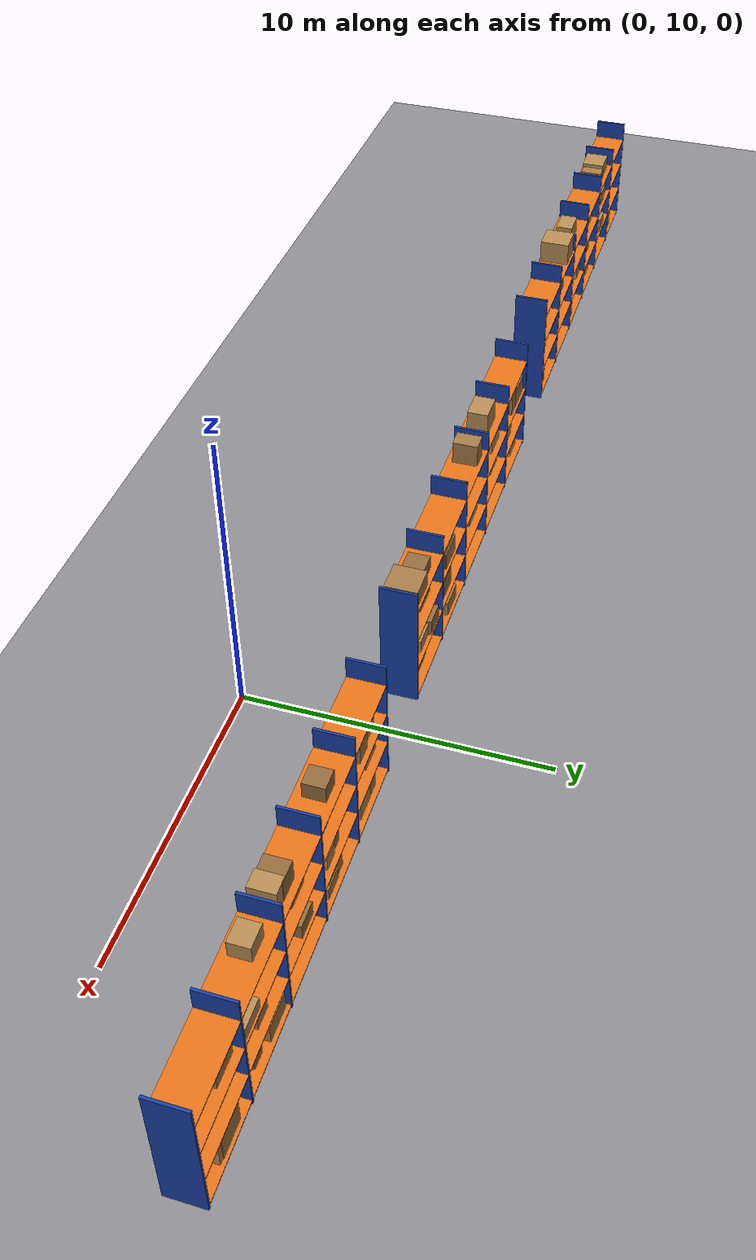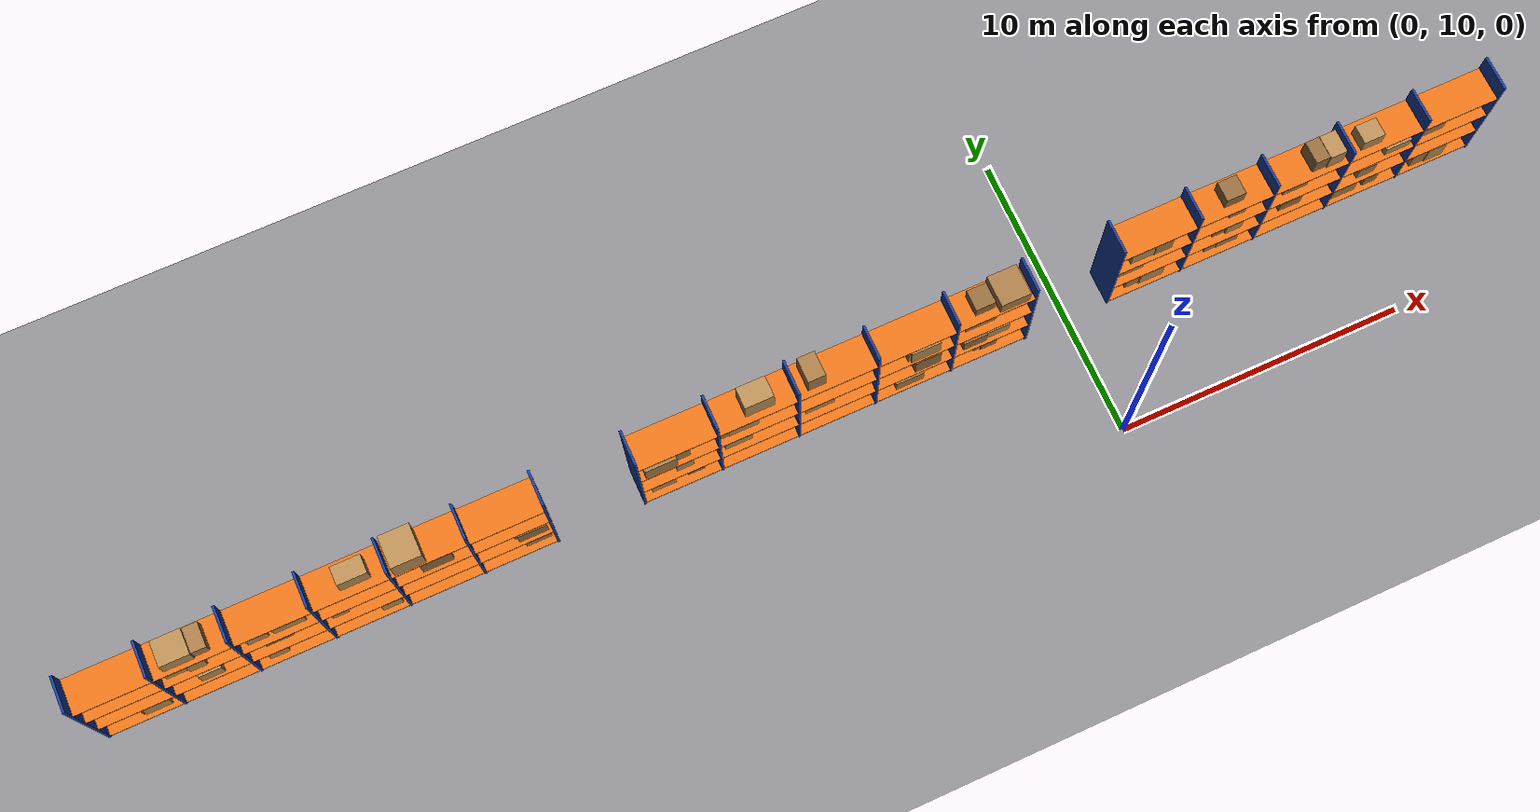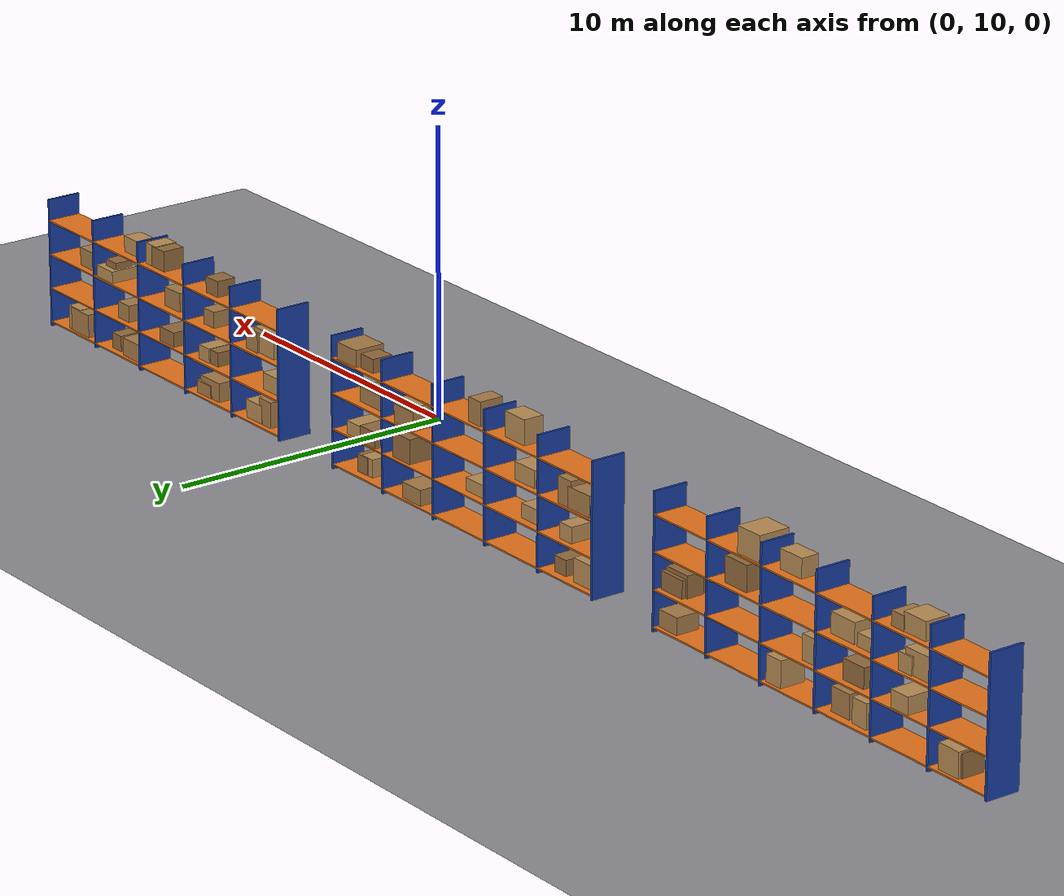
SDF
<sdf version="1.9">
 <world name="warehouse">
  <model name="ground_plane">
   <static>true</static>
   <link name="link">
    <collision name="collision">
     <geometry><plane><normal>0 0 1</normal><size>1 1</size></plane></geometry>
    </collision>
    <visual name="visual">
     <geometry><plane><normal>0 0 1</normal><size>200 100</size></plane></geometry>
     <material>
      <ambient>0.55 0.55 0.57 1</ambient>
      <diffuse>0.55 0.55 0.57 1</diffuse>
      <specular>0.1 0.1 0.1 1</specular>
     </material>
    </visual>
   </link>
  </model>
  <model name="rack28">
   <static>true</static>
   <link name="link">
    <collision name="up0_c">
     <pose>-33.000 14.700 2.250 0 0 0</pose>
     <geometry><box><size>0.080 1.200 4.500</size></box></geometry>
    </collision>
    <visual name="up0_v">
     <pose>-33.000 14.700 2.250 0 0 0</pose>
     <geometry><box><size>0.080 1.200 4.500</size></box></geometry>
     <material>
      <ambient>0.1 0.25 0.65 1</ambient>
      <diffuse>0.1 0.25 0.65 1</diffuse>
      <specular>0.1 0.1 0.1 1</specular>
     </material>
    </visual>
    <collision name="up1_c">
     <pose>-30.500 14.700 2.250 0 0 0</pose>
     <geometry><box><size>0.080 1.200 4.500</size></box></geometry>
    </collision>
    <visual name="up1_v">
     <pose>-30.500 14.700 2.250 0 0 0</pose>
     <geometry><box><size>0.080 1.200 4.500</size></box></geometry>
     <material>
      <ambient>0.1 0.25 0.65 1</ambient>
      <diffuse>0.1 0.25 0.65 1</diffuse>
      <specular>0.1 0.1 0.1 1</specular>
     </material>
    </visual>
    <collision name="up2_c">
     <pose>-28.000 14.700 2.250 0 0 0</pose>
     <geometry><box><size>0.080 1.200 4.500</size></box></geometry>
    </collision>
    <visual name="up2_v">
     <pose>-28.000 14.700 2.250 0 0 0</pose>
     <geometry><box><size>0.080 1.200 4.500</size></box></geometry>
     <material>
      <ambient>0.1 0.25 0.65 1</ambient>
      <diffuse>0.1 0.25 0.65 1</diffuse>
      <specular>0.1 0.1 0.1 1</specular>
     </material>
    </visual>
    <collision name="up3_c">
     <pose>-25.500 14.700 2.250 0 0 0</pose>
     <geometry><box><size>0.080 1.200 4.500</size></box></geometry>
    </collision>
    <visual name="up3_v">
     <pose>-25.500 14.700 2.250 0 0 0</pose>
     <geometry><box><size>0.080 1.200 4.500</size></box></geometry>
     <material>
      <ambient>0.1 0.25 0.65 1</ambient>
      <diffuse>0.1 0.25 0.65 1</diffuse>
      <specular>0.1 0.1 0.1 1</specular>
     </material>
    </visual>
    <collision name="up4_c">
     <pose>-23.000 14.700 2.250 0 0 0</pose>
     <geometry><box><size>0.080 1.200 4.500</size></box></geometry>
    </collision>
    <visual name="up4_v">
     <pose>-23.000 14.700 2.250 0 0 0</pose>
     <geometry><box><size>0.080 1.200 4.500</size></box></geometry>
     <material>
      <ambient>0.1 0.25 0.65 1</ambient>
      <diffuse>0.1 0.25 0.65 1</diffuse>
      <specular>0.1 0.1 0.1 1</specular>
     </material>
    </visual>
    <collision name="up5_c">
     <pose>-20.500 14.700 2.250 0 0 0</pose>
     <geometry><box><size>0.080 1.200 4.500</size></box></geometry>
    </collision>
    <visual name="up5_v">
     <pose>-20.500 14.700 2.250 0 0 0</pose>
     <geometry><box><size>0.080 1.200 4.500</size></box></geometry>
     <material>
      <ambient>0.1 0.25 0.65 1</ambient>
      <diffuse>0.1 0.25 0.65 1</diffuse>
      <specular>0.1 0.1 0.1 1</specular>
     </material>
    </visual>
    <collision name="up6_c">
     <pose>-18.000 14.700 2.250 0 0 0</pose>
     <geometry><box><size>0.080 1.200 4.500</size></box></geometry>
    </collision>
    <visual name="up6_v">
     <pose>-18.000 14.700 2.250 0 0 0</pose>
     <geometry><box><size>0.080 1.200 4.500</size></box></geometry>
     <material>
      <ambient>0.1 0.25 0.65 1</ambient>
      <diffuse>0.1 0.25 0.65 1</diffuse>
      <specular>0.1 0.1 0.1 1</specular>
     </material>
    </visual>
    <collision name="sh0_c">
     <pose>-25.500 14.700 0.150 0 0 0</pose>
     <geometry><box><size>15.000 1.200 0.050</size></box></geometry>
    </collision>
    <visual name="sh0_v">
     <pose>-25.500 14.700 0.150 0 0 0</pose>
     <geometry><box><size>15.000 1.200 0.050</size></box></geometry>
     <material>
      <ambient>0.9 0.45 0.1 1</ambient>
      <diffuse>0.9 0.45 0.1 1</diffuse>
      <specular>0.1 0.1 0.1 1</specular>
     </material>
    </visual>
    <collision name="sh1_c">
     <pose>-25.500 14.700 1.350 0 0 0</pose>
     <geometry><box><size>15.000 1.200 0.050</size></box></geometry>
    </collision>
    <visual name="sh1_v">
     <pose>-25.500 14.700 1.350 0 0 0</pose>
     <geometry><box><size>15.000 1.200 0.050</size></box></geometry>
     <material>
      <ambient>0.9 0.45 0.1 1</ambient>
      <diffuse>0.9 0.45 0.1 1</diffuse>
      <specular>0.1 0.1 0.1 1</specular>
     </material>
    </visual>
    <collision name="sh2_c">
     <pose>-25.500 14.700 2.550 0 0 0</pose>
     <geometry><box><size>15.000 1.200 0.050</size></box></geometry>
    </collision>
    <visual name="sh2_v">
     <pose>-25.500 14.700 2.550 0 0 0</pose>
     <geometry><box><size>15.000 1.200 0.050</size></box></geometry>
     <material>
      <ambient>0.9 0.45 0.1 1</ambient>
      <diffuse>0.9 0.45 0.1 1</diffuse>
      <specular>0.1 0.1 0.1 1</specular>
     </material>
    </visual>
    <collision name="sh3_c">
     <pose>-25.500 14.700 3.750 0 0 0</pose>
     <geometry><box><size>15.000 1.200 0.050</size></box></geometry>
    </collision>
    <visual name="sh3_v">
     <pose>-25.500 14.700 3.750 0 0 0</pose>
     <geometry><box><size>15.000 1.200 0.050</size></box></geometry>
     <material>
      <ambient>0.9 0.45 0.1 1</ambient>
      <diffuse>0.9 0.45 0.1 1</diffuse>
      <specular>0.1 0.1 0.1 1</specular>
     </material>
    </visual>
    <collision name="c0_c">
     <pose>-31.268 14.721 0.588 0 0 0</pose>
     <geometry><box><size>0.867 0.930 0.827</size></box></geometry>
    </collision>
    <visual name="c0_v">
     <pose>-31.268 14.721 0.588 0 0 0</pose>
     <geometry><box><size>0.867 0.930 0.827</size></box></geometry>
     <material>
      <ambient>0.72 0.55 0.33 1</ambient>
      <diffuse>0.72 0.55 0.33 1</diffuse>
      <specular>0.1 0.1 0.1 1</specular>
     </material>
    </visual>
    <collision name="c1_c">
     <pose>-31.446 14.690 0.563 0 0 0</pose>
     <geometry><box><size>0.645 0.805 0.776</size></box></geometry>
    </collision>
    <visual name="c1_v">
     <pose>-31.446 14.690 0.563 0 0 0</pose>
     <geometry><box><size>0.645 0.805 0.776</size></box></geometry>
     <material>
      <ambient>0.58 0.42 0.24 1</ambient>
      <diffuse>0.58 0.42 0.24 1</diffuse>
      <specular>0.1 0.1 0.1 1</specular>
     </material>
    </visual>
    <collision name="c2_c">
     <pose>-29.193 14.722 1.658 0 0 0</pose>
     <geometry><box><size>0.752 1.065 0.566</size></box></geometry>
    </collision>
    <visual name="c2_v">
     <pose>-29.193 14.722 1.658 0 0 0</pose>
     <geometry><box><size>0.752 1.065 0.566</size></box></geometry>
     <material>
      <ambient>0.72 0.55 0.33 1</ambient>
      <diffuse>0.72 0.55 0.33 1</diffuse>
      <specular>0.1 0.1 0.1 1</specular>
     </material>
    </visual>
    <collision name="c3_c">
     <pose>-29.786 14.741 2.969 0 0 0</pose>
     <geometry><box><size>1.050 0.775 0.787</size></box></geometry>
    </collision>
    <visual name="c3_v">
     <pose>-29.786 14.741 2.969 0 0 0</pose>
     <geometry><box><size>1.050 0.775 0.787</size></box></geometry>
     <material>
      <ambient>0.72 0.55 0.33 1</ambient>
      <diffuse>0.72 0.55 0.33 1</diffuse>
      <specular>0.1 0.1 0.1 1</specular>
     </material>
    </visual>
    <collision name="c4_c">
     <pose>-29.314 14.730 2.867 0 0 0</pose>
     <geometry><box><size>0.577 0.913 0.584</size></box></geometry>
    </collision>
    <visual name="c4_v">
     <pose>-29.314 14.730 2.867 0 0 0</pose>
     <geometry><box><size>0.577 0.913 0.584</size></box></geometry>
     <material>
      <ambient>0.72 0.55 0.33 1</ambient>
      <diffuse>0.72 0.55 0.33 1</diffuse>
      <specular>0.1 0.1 0.1 1</specular>
     </material>
    </visual>
    <collision name="c5_c">
     <pose>-28.892 14.720 4.012 0 0 0</pose>
     <geometry><box><size>0.544 0.833 0.475</size></box></geometry>
    </collision>
    <visual name="c5_v">
     <pose>-28.892 14.720 4.012 0 0 0</pose>
     <geometry><box><size>0.544 0.833 0.475</size></box></geometry>
     <material>
      <ambient>0.65 0.48 0.28 1</ambient>
      <diffuse>0.65 0.48 0.28 1</diffuse>
      <specular>0.1 0.1 0.1 1</specular>
     </material>
    </visual>
    <collision name="c6_c">
     <pose>-29.600 14.685 4.081 0 0 0</pose>
     <geometry><box><size>0.971 0.864 0.612</size></box></geometry>
    </collision>
    <visual name="c6_v">
     <pose>-29.600 14.685 4.081 0 0 0</pose>
     <geometry><box><size>0.971 0.864 0.612</size></box></geometry>
     <material>
      <ambient>0.72 0.55 0.33 1</ambient>
      <diffuse>0.72 0.55 0.33 1</diffuse>
      <specular>0.1 0.1 0.1 1</specular>
     </material>
    </visual>
    <collision name="c7_c">
     <pose>-26.364 14.729 0.577 0 0 0</pose>
     <geometry><box><size>0.812 0.606 0.803</size></box></geometry>
    </collision>
    <visual name="c7_v">
     <pose>-26.364 14.729 0.577 0 0 0</pose>
     <geometry><box><size>0.812 0.606 0.803</size></box></geometry>
     <material>
      <ambient>0.65 0.48 0.28 1</ambient>
      <diffuse>0.65 0.48 0.28 1</diffuse>
      <specular>0.1 0.1 0.1 1</specular>
     </material>
    </visual>
    <collision name="c8_c">
     <pose>-27.275 14.694 0.586 0 0 0</pose>
     <geometry><box><size>0.635 0.783 0.823</size></box></geometry>
    </collision>
    <visual name="c8_v">
     <pose>-27.275 14.694 0.586 0 0 0</pose>
     <geometry><box><size>0.635 0.783 0.823</size></box></geometry>
     <material>
      <ambient>0.72 0.55 0.33 1</ambient>
      <diffuse>0.72 0.55 0.33 1</diffuse>
      <specular>0.1 0.1 0.1 1</specular>
     </material>
    </visual>
    <collision name="c9_c">
     <pose>-26.960 14.731 1.708 0 0 0</pose>
     <geometry><box><size>0.922 0.691 0.666</size></box></geometry>
    </collision>
    <visual name="c9_v">
     <pose>-26.960 14.731 1.708 0 0 0</pose>
     <geometry><box><size>0.922 0.691 0.666</size></box></geometry>
     <material>
      <ambient>0.58 0.42 0.24 1</ambient>
      <diffuse>0.58 0.42 0.24 1</diffuse>
      <specular>0.1 0.1 0.1 1</specular>
     </material>
    </visual>
    <collision name="c10_c">
     <pose>-27.392 14.677 2.796 0 0 0</pose>
     <geometry><box><size>0.681 0.730 0.441</size></box></geometry>
    </collision>
    <visual name="c10_v">
     <pose>-27.392 14.677 2.796 0 0 0</pose>
     <geometry><box><size>0.681 0.730 0.441</size></box></geometry>
     <material>
      <ambient>0.72 0.55 0.33 1</ambient>
      <diffuse>0.72 0.55 0.33 1</diffuse>
      <specular>0.1 0.1 0.1 1</specular>
     </material>
    </visual>
    <collision name="c11_c">
     <pose>-26.381 14.670 2.914 0 0 0</pose>
     <geometry><box><size>1.052 0.706 0.679</size></box></geometry>
    </collision>
    <visual name="c11_v">
     <pose>-26.381 14.670 2.914 0 0 0</pose>
     <geometry><box><size>1.052 0.706 0.679</size></box></geometry>
     <material>
      <ambient>0.72 0.55 0.33 1</ambient>
      <diffuse>0.72 0.55 0.33 1</diffuse>
      <specular>0.1 0.1 0.1 1</specular>
     </material>
    </visual>
    <collision name="c12_c">
     <pose>-23.516 14.733 0.615 0 0 0</pose>
     <geometry><box><size>0.675 0.902 0.881</size></box></geometry>
    </collision>
    <visual name="c12_v">
     <pose>-23.516 14.733 0.615 0 0 0</pose>
     <geometry><box><size>0.675 0.902 0.881</size></box></geometry>
     <material>
      <ambient>0.72 0.55 0.33 1</ambient>
      <diffuse>0.72 0.55 0.33 1</diffuse>
      <specular>0.1 0.1 0.1 1</specular>
     </material>
    </visual>
    <collision name="c13_c">
     <pose>-23.465 14.735 0.405 0 0 0</pose>
     <geometry><box><size>0.635 0.700 0.461</size></box></geometry>
    </collision>
    <visual name="c13_v">
     <pose>-23.465 14.735 0.405 0 0 0</pose>
     <geometry><box><size>0.635 0.700 0.461</size></box></geometry>
     <material>
      <ambient>0.58 0.42 0.24 1</ambient>
      <diffuse>0.58 0.42 0.24 1</diffuse>
      <specular>0.1 0.1 0.1 1</specular>
     </material>
    </visual>
    <collision name="c14_c">
     <pose>-24.979 14.738 1.790 0 0 0</pose>
     <geometry><box><size>0.519 0.762 0.830</size></box></geometry>
    </collision>
    <visual name="c14_v">
     <pose>-24.979 14.738 1.790 0 0 0</pose>
     <geometry><box><size>0.519 0.762 0.830</size></box></geometry>
     <material>
      <ambient>0.72 0.55 0.33 1</ambient>
      <diffuse>0.72 0.55 0.33 1</diffuse>
      <specular>0.1 0.1 0.1 1</specular>
     </material>
    </visual>
    <collision name="c15_c">
     <pose>-23.999 14.694 4.099 0 0 0</pose>
     <geometry><box><size>0.976 0.625 0.647</size></box></geometry>
    </collision>
    <visual name="c15_v">
     <pose>-23.999 14.694 4.099 0 0 0</pose>
     <geometry><box><size>0.976 0.625 0.647</size></box></geometry>
     <material>
      <ambient>0.72 0.55 0.33 1</ambient>
      <diffuse>0.72 0.55 0.33 1</diffuse>
      <specular>0.1 0.1 0.1 1</specular>
     </material>
    </visual>
    <collision name="c16_c">
     <pose>-21.599 14.653 3.005 0 0 0</pose>
     <geometry><box><size>1.012 0.867 0.860</size></box></geometry>
    </collision>
    <visual name="c16_v">
     <pose>-21.599 14.653 3.005 0 0 0</pose>
     <geometry><box><size>1.012 0.867 0.860</size></box></geometry>
     <material>
      <ambient>0.58 0.42 0.24 1</ambient>
      <diffuse>0.58 0.42 0.24 1</diffuse>
      <specular>0.1 0.1 0.1 1</specular>
     </material>
    </visual>
    <collision name="c17_c">
     <pose>-22.339 14.683 4.207 0 0 0</pose>
     <geometry><box><size>1.013 1.092 0.864</size></box></geometry>
    </collision>
    <visual name="c17_v">
     <pose>-22.339 14.683 4.207 0 0 0</pose>
     <geometry><box><size>1.013 1.092 0.864</size></box></geometry>
     <material>
      <ambient>0.72 0.55 0.33 1</ambient>
      <diffuse>0.72 0.55 0.33 1</diffuse>
      <specular>0.1 0.1 0.1 1</specular>
     </material>
    </visual>
    <collision name="c18_c">
     <pose>-18.543 14.745 0.457 0 0 0</pose>
     <geometry><box><size>0.861 0.825 0.564</size></box></geometry>
    </collision>
    <visual name="c18_v">
     <pose>-18.543 14.745 0.457 0 0 0</pose>
     <geometry><box><size>0.861 0.825 0.564</size></box></geometry>
     <material>
      <ambient>0.65 0.48 0.28 1</ambient>
      <diffuse>0.65 0.48 0.28 1</diffuse>
      <specular>0.1 0.1 0.1 1</specular>
     </material>
    </visual>
    <collision name="c19_c">
     <pose>-18.705 14.661 1.741 0 0 0</pose>
     <geometry><box><size>1.001 0.602 0.731</size></box></geometry>
    </collision>
    <visual name="c19_v">
     <pose>-18.705 14.661 1.741 0 0 0</pose>
     <geometry><box><size>1.001 0.602 0.731</size></box></geometry>
     <material>
      <ambient>0.58 0.42 0.24 1</ambient>
      <diffuse>0.58 0.42 0.24 1</diffuse>
      <specular>0.1 0.1 0.1 1</specular>
     </material>
    </visual>
    <collision name="c20_c">
     <pose>-18.631 14.658 1.669 0 0 0</pose>
     <geometry><box><size>0.990 0.883 0.589</size></box></geometry>
    </collision>
    <visual name="c20_v">
     <pose>-18.631 14.658 1.669 0 0 0</pose>
     <geometry><box><size>0.990 0.883 0.589</size></box></geometry>
     <material>
      <ambient>0.58 0.42 0.24 1</ambient>
      <diffuse>0.58 0.42 0.24 1</diffuse>
      <specular>0.1 0.1 0.1 1</specular>
     </material>
    </visual>
   </link>
  </model>
  <model name="rack29">
   <static>true</static>
   <link name="link">
    <collision name="up0_c">
     <pose>-15.000 14.700 2.250 0 0 0</pose>
     <geometry><box><size>0.080 1.200 4.500</size></box></geometry>
    </collision>
    <visual name="up0_v">
     <pose>-15.000 14.700 2.250 0 0 0</pose>
     <geometry><box><size>0.080 1.200 4.500</size></box></geometry>
     <material>
      <ambient>0.1 0.25 0.65 1</ambient>
      <diffuse>0.1 0.25 0.65 1</diffuse>
      <specular>0.1 0.1 0.1 1</specular>
     </material>
    </visual>
    <collision name="up1_c">
     <pose>-12.300 14.700 2.250 0 0 0</pose>
     <geometry><box><size>0.080 1.200 4.500</size></box></geometry>
    </collision>
    <visual name="up1_v">
     <pose>-12.300 14.700 2.250 0 0 0</pose>
     <geometry><box><size>0.080 1.200 4.500</size></box></geometry>
     <material>
      <ambient>0.1 0.25 0.65 1</ambient>
      <diffuse>0.1 0.25 0.65 1</diffuse>
      <specular>0.1 0.1 0.1 1</specular>
     </material>
    </visual>
    <collision name="up2_c">
     <pose>-9.600 14.700 2.250 0 0 0</pose>
     <geometry><box><size>0.080 1.200 4.500</size></box></geometry>
    </collision>
    <visual name="up2_v">
     <pose>-9.600 14.700 2.250 0 0 0</pose>
     <geometry><box><size>0.080 1.200 4.500</size></box></geometry>
     <material>
      <ambient>0.1 0.25 0.65 1</ambient>
      <diffuse>0.1 0.25 0.65 1</diffuse>
      <specular>0.1 0.1 0.1 1</specular>
     </material>
    </visual>
    <collision name="up3_c">
     <pose>-6.900 14.700 2.250 0 0 0</pose>
     <geometry><box><size>0.080 1.200 4.500</size></box></geometry>
    </collision>
    <visual name="up3_v">
     <pose>-6.900 14.700 2.250 0 0 0</pose>
     <geometry><box><size>0.080 1.200 4.500</size></box></geometry>
     <material>
      <ambient>0.1 0.25 0.65 1</ambient>
      <diffuse>0.1 0.25 0.65 1</diffuse>
      <specular>0.1 0.1 0.1 1</specular>
     </material>
    </visual>
    <collision name="up4_c">
     <pose>-4.200 14.700 2.250 0 0 0</pose>
     <geometry><box><size>0.080 1.200 4.500</size></box></geometry>
    </collision>
    <visual name="up4_v">
     <pose>-4.200 14.700 2.250 0 0 0</pose>
     <geometry><box><size>0.080 1.200 4.500</size></box></geometry>
     <material>
      <ambient>0.1 0.25 0.65 1</ambient>
      <diffuse>0.1 0.25 0.65 1</diffuse>
      <specular>0.1 0.1 0.1 1</specular>
     </material>
    </visual>
    <collision name="up5_c">
     <pose>-1.500 14.700 2.250 0 0 0</pose>
     <geometry><box><size>0.080 1.200 4.500</size></box></geometry>
    </collision>
    <visual name="up5_v">
     <pose>-1.500 14.700 2.250 0 0 0</pose>
     <geometry><box><size>0.080 1.200 4.500</size></box></geometry>
     <material>
      <ambient>0.1 0.25 0.65 1</ambient>
      <diffuse>0.1 0.25 0.65 1</diffuse>
      <specular>0.1 0.1 0.1 1</specular>
     </material>
    </visual>
    <collision name="sh0_c">
     <pose>-8.250 14.700 0.150 0 0 0</pose>
     <geometry><box><size>13.500 1.200 0.050</size></box></geometry>
    </collision>
    <visual name="sh0_v">
     <pose>-8.250 14.700 0.150 0 0 0</pose>
     <geometry><box><size>13.500 1.200 0.050</size></box></geometry>
     <material>
      <ambient>0.9 0.45 0.1 1</ambient>
      <diffuse>0.9 0.45 0.1 1</diffuse>
      <specular>0.1 0.1 0.1 1</specular>
     </material>
    </visual>
    <collision name="sh1_c">
     <pose>-8.250 14.700 1.350 0 0 0</pose>
     <geometry><box><size>13.500 1.200 0.050</size></box></geometry>
    </collision>
    <visual name="sh1_v">
     <pose>-8.250 14.700 1.350 0 0 0</pose>
     <geometry><box><size>13.500 1.200 0.050</size></box></geometry>
     <material>
      <ambient>0.9 0.45 0.1 1</ambient>
      <diffuse>0.9 0.45 0.1 1</diffuse>
      <specular>0.1 0.1 0.1 1</specular>
     </material>
    </visual>
    <collision name="sh2_c">
     <pose>-8.250 14.700 2.550 0 0 0</pose>
     <geometry><box><size>13.500 1.200 0.050</size></box></geometry>
    </collision>
    <visual name="sh2_v">
     <pose>-8.250 14.700 2.550 0 0 0</pose>
     <geometry><box><size>13.500 1.200 0.050</size></box></geometry>
     <material>
      <ambient>0.9 0.45 0.1 1</ambient>
      <diffuse>0.9 0.45 0.1 1</diffuse>
      <specular>0.1 0.1 0.1 1</specular>
     </material>
    </visual>
    <collision name="sh3_c">
     <pose>-8.250 14.700 3.750 0 0 0</pose>
     <geometry><box><size>13.500 1.200 0.050</size></box></geometry>
    </collision>
    <visual name="sh3_v">
     <pose>-8.250 14.700 3.750 0 0 0</pose>
     <geometry><box><size>13.500 1.200 0.050</size></box></geometry>
     <material>
      <ambient>0.9 0.45 0.1 1</ambient>
      <diffuse>0.9 0.45 0.1 1</diffuse>
      <specular>0.1 0.1 0.1 1</specular>
     </material>
    </visual>
    <collision name="c0_c">
     <pose>-14.244 14.699 0.567 0 0 0</pose>
     <geometry><box><size>0.832 0.756 0.784</size></box></geometry>
    </collision>
    <visual name="c0_v">
     <pose>-14.244 14.699 0.567 0 0 0</pose>
     <geometry><box><size>0.832 0.756 0.784</size></box></geometry>
     <material>
      <ambient>0.72 0.55 0.33 1</ambient>
      <diffuse>0.72 0.55 0.33 1</diffuse>
      <specular>0.1 0.1 0.1 1</specular>
     </material>
    </visual>
    <collision name="c1_c">
     <pose>-13.106 14.700 0.442 0 0 0</pose>
     <geometry><box><size>0.590 0.658 0.534</size></box></geometry>
    </collision>
    <visual name="c1_v">
     <pose>-13.106 14.700 0.442 0 0 0</pose>
     <geometry><box><size>0.590 0.658 0.534</size></box></geometry>
     <material>
      <ambient>0.58 0.42 0.24 1</ambient>
      <diffuse>0.58 0.42 0.24 1</diffuse>
      <specular>0.1 0.1 0.1 1</specular>
     </material>
    </visual>
    <collision name="c2_c">
     <pose>-13.448 14.696 1.643 0 0 0</pose>
     <geometry><box><size>0.589 0.800 0.536</size></box></geometry>
    </collision>
    <visual name="c2_v">
     <pose>-13.448 14.696 1.643 0 0 0</pose>
     <geometry><box><size>0.589 0.800 0.536</size></box></geometry>
     <material>
      <ambient>0.72 0.55 0.33 1</ambient>
      <diffuse>0.72 0.55 0.33 1</diffuse>
      <specular>0.1 0.1 0.1 1</specular>
     </material>
    </visual>
    <collision name="c3_c">
     <pose>-14.246 14.672 2.929 0 0 0</pose>
     <geometry><box><size>1.068 1.097 0.709</size></box></geometry>
    </collision>
    <visual name="c3_v">
     <pose>-14.246 14.672 2.929 0 0 0</pose>
     <geometry><box><size>1.068 1.097 0.709</size></box></geometry>
     <material>
      <ambient>0.65 0.48 0.28 1</ambient>
      <diffuse>0.65 0.48 0.28 1</diffuse>
      <specular>0.1 0.1 0.1 1</specular>
     </material>
    </visual>
    <collision name="c4_c">
     <pose>-13.545 14.745 3.017 0 0 0</pose>
     <geometry><box><size>0.648 0.936 0.884</size></box></geometry>
    </collision>
    <visual name="c4_v">
     <pose>-13.545 14.745 3.017 0 0 0</pose>
     <geometry><box><size>0.648 0.936 0.884</size></box></geometry>
     <material>
      <ambient>0.65 0.48 0.28 1</ambient>
      <diffuse>0.65 0.48 0.28 1</diffuse>
      <specular>0.1 0.1 0.1 1</specular>
     </material>
    </visual>
    <collision name="c5_c">
     <pose>-11.601 14.666 1.616 0 0 0</pose>
     <geometry><box><size>0.936 0.700 0.482</size></box></geometry>
    </collision>
    <visual name="c5_v">
     <pose>-11.601 14.666 1.616 0 0 0</pose>
     <geometry><box><size>0.936 0.700 0.482</size></box></geometry>
     <material>
      <ambient>0.72 0.55 0.33 1</ambient>
      <diffuse>0.72 0.55 0.33 1</diffuse>
      <specular>0.1 0.1 0.1 1</specular>
     </material>
    </visual>
    <collision name="c6_c">
     <pose>-11.385 14.711 2.868 0 0 0</pose>
     <geometry><box><size>1.020 0.774 0.586</size></box></geometry>
    </collision>
    <visual name="c6_v">
     <pose>-11.385 14.711 2.868 0 0 0</pose>
     <geometry><box><size>1.020 0.774 0.586</size></box></geometry>
     <material>
      <ambient>0.72 0.55 0.33 1</ambient>
      <diffuse>0.72 0.55 0.33 1</diffuse>
      <specular>0.1 0.1 0.1 1</specular>
     </material>
    </visual>
    <collision name="c7_c">
     <pose>-11.647 14.687 2.775 0 0 0</pose>
     <geometry><box><size>1.058 0.689 0.401</size></box></geometry>
    </collision>
    <visual name="c7_v">
     <pose>-11.647 14.687 2.775 0 0 0</pose>
     <geometry><box><size>1.058 0.689 0.401</size></box></geometry>
     <material>
      <ambient>0.65 0.48 0.28 1</ambient>
      <diffuse>0.65 0.48 0.28 1</diffuse>
      <specular>0.1 0.1 0.1 1</specular>
     </material>
    </visual>
    <collision name="c8_c">
     <pose>-10.818 14.692 4.198 0 0 0</pose>
     <geometry><box><size>0.981 0.722 0.846</size></box></geometry>
    </collision>
    <visual name="c8_v">
     <pose>-10.818 14.692 4.198 0 0 0</pose>
     <geometry><box><size>0.981 0.722 0.846</size></box></geometry>
     <material>
      <ambient>0.72 0.55 0.33 1</ambient>
      <diffuse>0.72 0.55 0.33 1</diffuse>
      <specular>0.1 0.1 0.1 1</specular>
     </material>
    </visual>
    <collision name="c9_c">
     <pose>-8.782 14.689 1.589 0 0 0</pose>
     <geometry><box><size>0.990 0.704 0.429</size></box></geometry>
    </collision>
    <visual name="c9_v">
     <pose>-8.782 14.689 1.589 0 0 0</pose>
     <geometry><box><size>0.990 0.704 0.429</size></box></geometry>
     <material>
      <ambient>0.72 0.55 0.33 1</ambient>
      <diffuse>0.72 0.55 0.33 1</diffuse>
      <specular>0.1 0.1 0.1 1</specular>
     </material>
    </visual>
    <collision name="c10_c">
     <pose>-8.921 14.736 4.180 0 0 0</pose>
     <geometry><box><size>0.598 0.856 0.810</size></box></geometry>
    </collision>
    <visual name="c10_v">
     <pose>-8.921 14.736 4.180 0 0 0</pose>
     <geometry><box><size>0.598 0.856 0.810</size></box></geometry>
     <material>
      <ambient>0.65 0.48 0.28 1</ambient>
      <diffuse>0.65 0.48 0.28 1</diffuse>
      <specular>0.1 0.1 0.1 1</specular>
     </material>
    </visual>
    <collision name="c11_c">
     <pose>-5.638 14.707 0.442 0 0 0</pose>
     <geometry><box><size>0.974 0.991 0.534</size></box></geometry>
    </collision>
    <visual name="c11_v">
     <pose>-5.638 14.707 0.442 0 0 0</pose>
     <geometry><box><size>0.974 0.991 0.534</size></box></geometry>
     <material>
      <ambient>0.65 0.48 0.28 1</ambient>
      <diffuse>0.65 0.48 0.28 1</diffuse>
      <specular>0.1 0.1 0.1 1</specular>
     </material>
    </visual>
    <collision name="c12_c">
     <pose>-5.090 14.674 1.791 0 0 0</pose>
     <geometry><box><size>0.891 1.027 0.833</size></box></geometry>
    </collision>
    <visual name="c12_v">
     <pose>-5.090 14.674 1.791 0 0 0</pose>
     <geometry><box><size>0.891 1.027 0.833</size></box></geometry>
     <material>
      <ambient>0.58 0.42 0.24 1</ambient>
      <diffuse>0.58 0.42 0.24 1</diffuse>
      <specular>0.1 0.1 0.1 1</specular>
     </material>
    </visual>
    <collision name="c13_c">
     <pose>-5.225 14.674 2.953 0 0 0</pose>
     <geometry><box><size>0.997 1.038 0.757</size></box></geometry>
    </collision>
    <visual name="c13_v">
     <pose>-5.225 14.674 2.953 0 0 0</pose>
     <geometry><box><size>0.997 1.038 0.757</size></box></geometry>
     <material>
      <ambient>0.72 0.55 0.33 1</ambient>
      <diffuse>0.72 0.55 0.33 1</diffuse>
      <specular>0.1 0.1 0.1 1</specular>
     </material>
    </visual>
    <collision name="c14_c">
     <pose>-5.291 14.730 2.890 0 0 0</pose>
     <geometry><box><size>1.028 1.003 0.629</size></box></geometry>
    </collision>
    <visual name="c14_v">
     <pose>-5.291 14.730 2.890 0 0 0</pose>
     <geometry><box><size>1.028 1.003 0.629</size></box></geometry>
     <material>
      <ambient>0.65 0.48 0.28 1</ambient>
      <diffuse>0.65 0.48 0.28 1</diffuse>
      <specular>0.1 0.1 0.1 1</specular>
     </material>
    </visual>
    <collision name="c15_c">
     <pose>-2.993 14.688 0.479 0 0 0</pose>
     <geometry><box><size>0.574 0.637 0.608</size></box></geometry>
    </collision>
    <visual name="c15_v">
     <pose>-2.993 14.688 0.479 0 0 0</pose>
     <geometry><box><size>0.574 0.637 0.608</size></box></geometry>
     <material>
      <ambient>0.72 0.55 0.33 1</ambient>
      <diffuse>0.72 0.55 0.33 1</diffuse>
      <specular>0.1 0.1 0.1 1</specular>
     </material>
    </visual>
    <collision name="c16_c">
     <pose>-2.762 14.671 0.473 0 0 0</pose>
     <geometry><box><size>0.557 0.701 0.595</size></box></geometry>
    </collision>
    <visual name="c16_v">
     <pose>-2.762 14.671 0.473 0 0 0</pose>
     <geometry><box><size>0.557 0.701 0.595</size></box></geometry>
     <material>
      <ambient>0.58 0.42 0.24 1</ambient>
      <diffuse>0.58 0.42 0.24 1</diffuse>
      <specular>0.1 0.1 0.1 1</specular>
     </material>
    </visual>
    <collision name="c17_c">
     <pose>-2.639 14.718 1.601 0 0 0</pose>
     <geometry><box><size>0.951 0.920 0.453</size></box></geometry>
    </collision>
    <visual name="c17_v">
     <pose>-2.639 14.718 1.601 0 0 0</pose>
     <geometry><box><size>0.951 0.920 0.453</size></box></geometry>
     <material>
      <ambient>0.72 0.55 0.33 1</ambient>
      <diffuse>0.72 0.55 0.33 1</diffuse>
      <specular>0.1 0.1 0.1 1</specular>
     </material>
    </visual>
    <collision name="c18_c">
     <pose>-3.400 14.735 1.653 0 0 0</pose>
     <geometry><box><size>0.805 1.076 0.556</size></box></geometry>
    </collision>
    <visual name="c18_v">
     <pose>-3.400 14.735 1.653 0 0 0</pose>
     <geometry><box><size>0.805 1.076 0.556</size></box></geometry>
     <material>
      <ambient>0.58 0.42 0.24 1</ambient>
      <diffuse>0.58 0.42 0.24 1</diffuse>
      <specular>0.1 0.1 0.1 1</specular>
     </material>
    </visual>
    <collision name="c19_c">
     <pose>-3.200 14.692 2.832 0 0 0</pose>
     <geometry><box><size>1.074 0.638 0.513</size></box></geometry>
    </collision>
    <visual name="c19_v">
     <pose>-3.200 14.692 2.832 0 0 0</pose>
     <geometry><box><size>1.074 0.638 0.513</size></box></geometry>
     <material>
      <ambient>0.65 0.48 0.28 1</ambient>
      <diffuse>0.65 0.48 0.28 1</diffuse>
      <specular>0.1 0.1 0.1 1</specular>
     </material>
    </visual>
    <collision name="c20_c">
     <pose>-2.224 14.692 4.061 0 0 0</pose>
     <geometry><box><size>1.016 1.068 0.572</size></box></geometry>
    </collision>
    <visual name="c20_v">
     <pose>-2.224 14.692 4.061 0 0 0</pose>
     <geometry><box><size>1.016 1.068 0.572</size></box></geometry>
     <material>
      <ambient>0.65 0.48 0.28 1</ambient>
      <diffuse>0.65 0.48 0.28 1</diffuse>
      <specular>0.1 0.1 0.1 1</specular>
     </material>
    </visual>
    <collision name="c21_c">
     <pose>-3.149 14.737 4.011 0 0 0</pose>
     <geometry><box><size>0.671 0.716 0.472</size></box></geometry>
    </collision>
    <visual name="c21_v">
     <pose>-3.149 14.737 4.011 0 0 0</pose>
     <geometry><box><size>0.671 0.716 0.472</size></box></geometry>
     <material>
      <ambient>0.58 0.42 0.24 1</ambient>
      <diffuse>0.58 0.42 0.24 1</diffuse>
      <specular>0.1 0.1 0.1 1</specular>
     </material>
    </visual>
   </link>
  </model>
  <model name="rack30">
   <static>true</static>
   <link name="link">
    <collision name="up0_c">
     <pose>1.500 14.700 2.250 0 0 0</pose>
     <geometry><box><size>0.080 1.200 4.500</size></box></geometry>
    </collision>
    <visual name="up0_v">
     <pose>1.500 14.700 2.250 0 0 0</pose>
     <geometry><box><size>0.080 1.200 4.500</size></box></geometry>
     <material>
      <ambient>0.1 0.25 0.65 1</ambient>
      <diffuse>0.1 0.25 0.65 1</diffuse>
      <specular>0.1 0.1 0.1 1</specular>
     </material>
    </visual>
    <collision name="up1_c">
     <pose>4.200 14.700 2.250 0 0 0</pose>
     <geometry><box><size>0.080 1.200 4.500</size></box></geometry>
    </collision>
    <visual name="up1_v">
     <pose>4.200 14.700 2.250 0 0 0</pose>
     <geometry><box><size>0.080 1.200 4.500</size></box></geometry>
     <material>
      <ambient>0.1 0.25 0.65 1</ambient>
      <diffuse>0.1 0.25 0.65 1</diffuse>
      <specular>0.1 0.1 0.1 1</specular>
     </material>
    </visual>
    <collision name="up2_c">
     <pose>6.900 14.700 2.250 0 0 0</pose>
     <geometry><box><size>0.080 1.200 4.500</size></box></geometry>
    </collision>
    <visual name="up2_v">
     <pose>6.900 14.700 2.250 0 0 0</pose>
     <geometry><box><size>0.080 1.200 4.500</size></box></geometry>
     <material>
      <ambient>0.1 0.25 0.65 1</ambient>
      <diffuse>0.1 0.25 0.65 1</diffuse>
      <specular>0.1 0.1 0.1 1</specular>
     </material>
    </visual>
    <collision name="up3_c">
     <pose>9.600 14.700 2.250 0 0 0</pose>
     <geometry><box><size>0.080 1.200 4.500</size></box></geometry>
    </collision>
    <visual name="up3_v">
     <pose>9.600 14.700 2.250 0 0 0</pose>
     <geometry><box><size>0.080 1.200 4.500</size></box></geometry>
     <material>
      <ambient>0.1 0.25 0.65 1</ambient>
      <diffuse>0.1 0.25 0.65 1</diffuse>
      <specular>0.1 0.1 0.1 1</specular>
     </material>
    </visual>
    <collision name="up4_c">
     <pose>12.300 14.700 2.250 0 0 0</pose>
     <geometry><box><size>0.080 1.200 4.500</size></box></geometry>
    </collision>
    <visual name="up4_v">
     <pose>12.300 14.700 2.250 0 0 0</pose>
     <geometry><box><size>0.080 1.200 4.500</size></box></geometry>
     <material>
      <ambient>0.1 0.25 0.65 1</ambient>
      <diffuse>0.1 0.25 0.65 1</diffuse>
      <specular>0.1 0.1 0.1 1</specular>
     </material>
    </visual>
    <collision name="up5_c">
     <pose>15.000 14.700 2.250 0 0 0</pose>
     <geometry><box><size>0.080 1.200 4.500</size></box></geometry>
    </collision>
    <visual name="up5_v">
     <pose>15.000 14.700 2.250 0 0 0</pose>
     <geometry><box><size>0.080 1.200 4.500</size></box></geometry>
     <material>
      <ambient>0.1 0.25 0.65 1</ambient>
      <diffuse>0.1 0.25 0.65 1</diffuse>
      <specular>0.1 0.1 0.1 1</specular>
     </material>
    </visual>
    <collision name="sh0_c">
     <pose>8.250 14.700 0.150 0 0 0</pose>
     <geometry><box><size>13.500 1.200 0.050</size></box></geometry>
    </collision>
    <visual name="sh0_v">
     <pose>8.250 14.700 0.150 0 0 0</pose>
     <geometry><box><size>13.500 1.200 0.050</size></box></geometry>
     <material>
      <ambient>0.9 0.45 0.1 1</ambient>
      <diffuse>0.9 0.45 0.1 1</diffuse>
      <specular>0.1 0.1 0.1 1</specular>
     </material>
    </visual>
    <collision name="sh1_c">
     <pose>8.250 14.700 1.350 0 0 0</pose>
     <geometry><box><size>13.500 1.200 0.050</size></box></geometry>
    </collision>
    <visual name="sh1_v">
     <pose>8.250 14.700 1.350 0 0 0</pose>
     <geometry><box><size>13.500 1.200 0.050</size></box></geometry>
     <material>
      <ambient>0.9 0.45 0.1 1</ambient>
      <diffuse>0.9 0.45 0.1 1</diffuse>
      <specular>0.1 0.1 0.1 1</specular>
     </material>
    </visual>
    <collision name="sh2_c">
     <pose>8.250 14.700 2.550 0 0 0</pose>
     <geometry><box><size>13.500 1.200 0.050</size></box></geometry>
    </collision>
    <visual name="sh2_v">
     <pose>8.250 14.700 2.550 0 0 0</pose>
     <geometry><box><size>13.500 1.200 0.050</size></box></geometry>
     <material>
      <ambient>0.9 0.45 0.1 1</ambient>
      <diffuse>0.9 0.45 0.1 1</diffuse>
      <specular>0.1 0.1 0.1 1</specular>
     </material>
    </visual>
    <collision name="sh3_c">
     <pose>8.250 14.700 3.750 0 0 0</pose>
     <geometry><box><size>13.500 1.200 0.050</size></box></geometry>
    </collision>
    <visual name="sh3_v">
     <pose>8.250 14.700 3.750 0 0 0</pose>
     <geometry><box><size>13.500 1.200 0.050</size></box></geometry>
     <material>
      <ambient>0.9 0.45 0.1 1</ambient>
      <diffuse>0.9 0.45 0.1 1</diffuse>
      <specular>0.1 0.1 0.1 1</specular>
     </material>
    </visual>
    <collision name="c0_c">
     <pose>3.134 14.687 0.488 0 0 0</pose>
     <geometry><box><size>0.866 0.891 0.626</size></box></geometry>
    </collision>
    <visual name="c0_v">
     <pose>3.134 14.687 0.488 0 0 0</pose>
     <geometry><box><size>0.866 0.891 0.626</size></box></geometry>
     <material>
      <ambient>0.72 0.55 0.33 1</ambient>
      <diffuse>0.72 0.55 0.33 1</diffuse>
      <specular>0.1 0.1 0.1 1</specular>
     </material>
    </visual>
    <collision name="c1_c">
     <pose>2.536 14.708 0.615 0 0 0</pose>
     <geometry><box><size>0.656 0.827 0.880</size></box></geometry>
    </collision>
    <visual name="c1_v">
     <pose>2.536 14.708 0.615 0 0 0</pose>
     <geometry><box><size>0.656 0.827 0.880</size></box></geometry>
     <material>
      <ambient>0.65 0.48 0.28 1</ambient>
      <diffuse>0.65 0.48 0.28 1</diffuse>
      <specular>0.1 0.1 0.1 1</specular>
     </material>
    </visual>
    <collision name="c2_c">
     <pose>2.279 14.700 1.663 0 0 0</pose>
     <geometry><box><size>0.896 0.668 0.576</size></box></geometry>
    </collision>
    <visual name="c2_v">
     <pose>2.279 14.700 1.663 0 0 0</pose>
     <geometry><box><size>0.896 0.668 0.576</size></box></geometry>
     <material>
      <ambient>0.72 0.55 0.33 1</ambient>
      <diffuse>0.72 0.55 0.33 1</diffuse>
      <specular>0.1 0.1 0.1 1</specular>
     </material>
    </visual>
    <collision name="c3_c">
     <pose>2.594 14.671 2.992 0 0 0</pose>
     <geometry><box><size>1.090 0.808 0.833</size></box></geometry>
    </collision>
    <visual name="c3_v">
     <pose>2.594 14.671 2.992 0 0 0</pose>
     <geometry><box><size>1.090 0.808 0.833</size></box></geometry>
     <material>
      <ambient>0.72 0.55 0.33 1</ambient>
      <diffuse>0.72 0.55 0.33 1</diffuse>
      <specular>0.1 0.1 0.1 1</specular>
     </material>
    </visual>
    <collision name="c4_c">
     <pose>3.183 14.697 2.913 0 0 0</pose>
     <geometry><box><size>0.626 0.907 0.676</size></box></geometry>
    </collision>
    <visual name="c4_v">
     <pose>3.183 14.697 2.913 0 0 0</pose>
     <geometry><box><size>0.626 0.907 0.676</size></box></geometry>
     <material>
      <ambient>0.65 0.48 0.28 1</ambient>
      <diffuse>0.65 0.48 0.28 1</diffuse>
      <specular>0.1 0.1 0.1 1</specular>
     </material>
    </visual>
    <collision name="c5_c">
     <pose>5.678 14.733 0.504 0 0 0</pose>
     <geometry><box><size>1.051 0.793 0.659</size></box></geometry>
    </collision>
    <visual name="c5_v">
     <pose>5.678 14.733 0.504 0 0 0</pose>
     <geometry><box><size>1.051 0.793 0.659</size></box></geometry>
     <material>
      <ambient>0.65 0.48 0.28 1</ambient>
      <diffuse>0.65 0.48 0.28 1</diffuse>
      <specular>0.1 0.1 0.1 1</specular>
     </material>
    </visual>
    <collision name="c6_c">
     <pose>5.987 14.741 0.395 0 0 0</pose>
     <geometry><box><size>0.780 0.841 0.441</size></box></geometry>
    </collision>
    <visual name="c6_v">
     <pose>5.987 14.741 0.395 0 0 0</pose>
     <geometry><box><size>0.780 0.841 0.441</size></box></geometry>
     <material>
      <ambient>0.65 0.48 0.28 1</ambient>
      <diffuse>0.65 0.48 0.28 1</diffuse>
      <specular>0.1 0.1 0.1 1</specular>
     </material>
    </visual>
    <collision name="c7_c">
     <pose>5.985 14.710 1.625 0 0 0</pose>
     <geometry><box><size>0.582 0.850 0.501</size></box></geometry>
    </collision>
    <visual name="c7_v">
     <pose>5.985 14.710 1.625 0 0 0</pose>
     <geometry><box><size>0.582 0.850 0.501</size></box></geometry>
     <material>
      <ambient>0.72 0.55 0.33 1</ambient>
      <diffuse>0.72 0.55 0.33 1</diffuse>
      <specular>0.1 0.1 0.1 1</specular>
     </material>
    </visual>
    <collision name="c8_c">
     <pose>5.545 14.724 1.620 0 0 0</pose>
     <geometry><box><size>0.618 0.740 0.489</size></box></geometry>
    </collision>
    <visual name="c8_v">
     <pose>5.545 14.724 1.620 0 0 0</pose>
     <geometry><box><size>0.618 0.740 0.489</size></box></geometry>
     <material>
      <ambient>0.58 0.42 0.24 1</ambient>
      <diffuse>0.58 0.42 0.24 1</diffuse>
      <specular>0.1 0.1 0.1 1</specular>
     </material>
    </visual>
    <collision name="c9_c">
     <pose>5.920 14.668 2.852 0 0 0</pose>
     <geometry><box><size>0.593 0.605 0.554</size></box></geometry>
    </collision>
    <visual name="c9_v">
     <pose>5.920 14.668 2.852 0 0 0</pose>
     <geometry><box><size>0.593 0.605 0.554</size></box></geometry>
     <material>
      <ambient>0.65 0.48 0.28 1</ambient>
      <diffuse>0.65 0.48 0.28 1</diffuse>
      <specular>0.1 0.1 0.1 1</specular>
     </material>
    </visual>
    <collision name="c10_c">
     <pose>5.566 14.729 4.050 0 0 0</pose>
     <geometry><box><size>0.671 0.685 0.549</size></box></geometry>
    </collision>
    <visual name="c10_v">
     <pose>5.566 14.729 4.050 0 0 0</pose>
     <geometry><box><size>0.671 0.685 0.549</size></box></geometry>
     <material>
      <ambient>0.58 0.42 0.24 1</ambient>
      <diffuse>0.58 0.42 0.24 1</diffuse>
      <specular>0.1 0.1 0.1 1</specular>
     </material>
    </visual>
    <collision name="c11_c">
     <pose>8.040 14.747 1.626 0 0 0</pose>
     <geometry><box><size>0.805 0.951 0.503</size></box></geometry>
    </collision>
    <visual name="c11_v">
     <pose>8.040 14.747 1.626 0 0 0</pose>
     <geometry><box><size>0.805 0.951 0.503</size></box></geometry>
     <material>
      <ambient>0.58 0.42 0.24 1</ambient>
      <diffuse>0.58 0.42 0.24 1</diffuse>
      <specular>0.1 0.1 0.1 1</specular>
     </material>
    </visual>
    <collision name="c12_c">
     <pose>8.015 14.681 2.898 0 0 0</pose>
     <geometry><box><size>0.904 0.644 0.647</size></box></geometry>
    </collision>
    <visual name="c12_v">
     <pose>8.015 14.681 2.898 0 0 0</pose>
     <geometry><box><size>0.904 0.644 0.647</size></box></geometry>
     <material>
      <ambient>0.65 0.48 0.28 1</ambient>
      <diffuse>0.65 0.48 0.28 1</diffuse>
      <specular>0.1 0.1 0.1 1</specular>
     </material>
    </visual>
    <collision name="c13_c">
     <pose>8.687 14.704 4.130 0 0 0</pose>
     <geometry><box><size>0.714 0.774 0.710</size></box></geometry>
    </collision>
    <visual name="c13_v">
     <pose>8.687 14.704 4.130 0 0 0</pose>
     <geometry><box><size>0.714 0.774 0.710</size></box></geometry>
     <material>
      <ambient>0.58 0.42 0.24 1</ambient>
      <diffuse>0.58 0.42 0.24 1</diffuse>
      <specular>0.1 0.1 0.1 1</specular>
     </material>
    </visual>
    <collision name="c14_c">
     <pose>9.109 14.676 4.142 0 0 0</pose>
     <geometry><box><size>0.580 0.807 0.734</size></box></geometry>
    </collision>
    <visual name="c14_v">
     <pose>9.109 14.676 4.142 0 0 0</pose>
     <geometry><box><size>0.580 0.807 0.734</size></box></geometry>
     <material>
      <ambient>0.72 0.55 0.33 1</ambient>
      <diffuse>0.72 0.55 0.33 1</diffuse>
      <specular>0.1 0.1 0.1 1</specular>
     </material>
    </visual>
    <collision name="c15_c">
     <pose>10.245 14.720 0.486 0 0 0</pose>
     <geometry><box><size>1.042 0.915 0.621</size></box></geometry>
    </collision>
    <visual name="c15_v">
     <pose>10.245 14.720 0.486 0 0 0</pose>
     <geometry><box><size>1.042 0.915 0.621</size></box></geometry>
     <material>
      <ambient>0.65 0.48 0.28 1</ambient>
      <diffuse>0.65 0.48 0.28 1</diffuse>
      <specular>0.1 0.1 0.1 1</specular>
     </material>
    </visual>
    <collision name="c16_c">
     <pose>11.325 14.669 0.446 0 0 0</pose>
     <geometry><box><size>0.516 0.794 0.543</size></box></geometry>
    </collision>
    <visual name="c16_v">
     <pose>11.325 14.669 0.446 0 0 0</pose>
     <geometry><box><size>0.516 0.794 0.543</size></box></geometry>
     <material>
      <ambient>0.58 0.42 0.24 1</ambient>
      <diffuse>0.58 0.42 0.24 1</diffuse>
      <specular>0.1 0.1 0.1 1</specular>
     </material>
    </visual>
    <collision name="c17_c">
     <pose>10.848 14.658 1.660 0 0 0</pose>
     <geometry><box><size>0.646 0.842 0.570</size></box></geometry>
    </collision>
    <visual name="c17_v">
     <pose>10.848 14.658 1.660 0 0 0</pose>
     <geometry><box><size>0.646 0.842 0.570</size></box></geometry>
     <material>
      <ambient>0.65 0.48 0.28 1</ambient>
      <diffuse>0.65 0.48 0.28 1</diffuse>
      <specular>0.1 0.1 0.1 1</specular>
     </material>
    </visual>
    <collision name="c18_c">
     <pose>11.625 14.711 2.893 0 0 0</pose>
     <geometry><box><size>0.594 0.626 0.636</size></box></geometry>
    </collision>
    <visual name="c18_v">
     <pose>11.625 14.711 2.893 0 0 0</pose>
     <geometry><box><size>0.594 0.626 0.636</size></box></geometry>
     <material>
      <ambient>0.58 0.42 0.24 1</ambient>
      <diffuse>0.58 0.42 0.24 1</diffuse>
      <specular>0.1 0.1 0.1 1</specular>
     </material>
    </visual>
    <collision name="c19_c">
     <pose>11.695 14.740 2.779 0 0 0</pose>
     <geometry><box><size>0.926 1.013 0.407</size></box></geometry>
    </collision>
    <visual name="c19_v">
     <pose>11.695 14.740 2.779 0 0 0</pose>
     <geometry><box><size>0.926 1.013 0.407</size></box></geometry>
     <material>
      <ambient>0.72 0.55 0.33 1</ambient>
      <diffuse>0.72 0.55 0.33 1</diffuse>
      <specular>0.1 0.1 0.1 1</specular>
     </material>
    </visual>
    <collision name="c20_c">
     <pose>10.476 14.661 4.046 0 0 0</pose>
     <geometry><box><size>0.743 0.652 0.542</size></box></geometry>
    </collision>
    <visual name="c20_v">
     <pose>10.476 14.661 4.046 0 0 0</pose>
     <geometry><box><size>0.743 0.652 0.542</size></box></geometry>
     <material>
      <ambient>0.72 0.55 0.33 1</ambient>
      <diffuse>0.72 0.55 0.33 1</diffuse>
      <specular>0.1 0.1 0.1 1</specular>
     </material>
    </visual>
    <collision name="c21_c">
     <pose>13.368 14.713 0.574 0 0 0</pose>
     <geometry><box><size>1.044 0.977 0.798</size></box></geometry>
    </collision>
    <visual name="c21_v">
     <pose>13.368 14.713 0.574 0 0 0</pose>
     <geometry><box><size>1.044 0.977 0.798</size></box></geometry>
     <material>
      <ambient>0.65 0.48 0.28 1</ambient>
      <diffuse>0.65 0.48 0.28 1</diffuse>
      <specular>0.1 0.1 0.1 1</specular>
     </material>
    </visual>
    <collision name="c22_c">
     <pose>13.722 14.684 0.583 0 0 0</pose>
     <geometry><box><size>0.669 0.994 0.816</size></box></geometry>
    </collision>
    <visual name="c22_v">
     <pose>13.722 14.684 0.583 0 0 0</pose>
     <geometry><box><size>0.669 0.994 0.816</size></box></geometry>
     <material>
      <ambient>0.72 0.55 0.33 1</ambient>
      <diffuse>0.72 0.55 0.33 1</diffuse>
      <specular>0.1 0.1 0.1 1</specular>
     </material>
    </visual>
    <collision name="c23_c">
     <pose>12.976 14.685 2.889 0 0 0</pose>
     <geometry><box><size>0.952 0.757 0.628</size></box></geometry>
    </collision>
    <visual name="c23_v">
     <pose>12.976 14.685 2.889 0 0 0</pose>
     <geometry><box><size>0.952 0.757 0.628</size></box></geometry>
     <material>
      <ambient>0.65 0.48 0.28 1</ambient>
      <diffuse>0.65 0.48 0.28 1</diffuse>
      <specular>0.1 0.1 0.1 1</specular>
     </material>
    </visual>
   </link>
  </model>
 </world>
</sdf>
